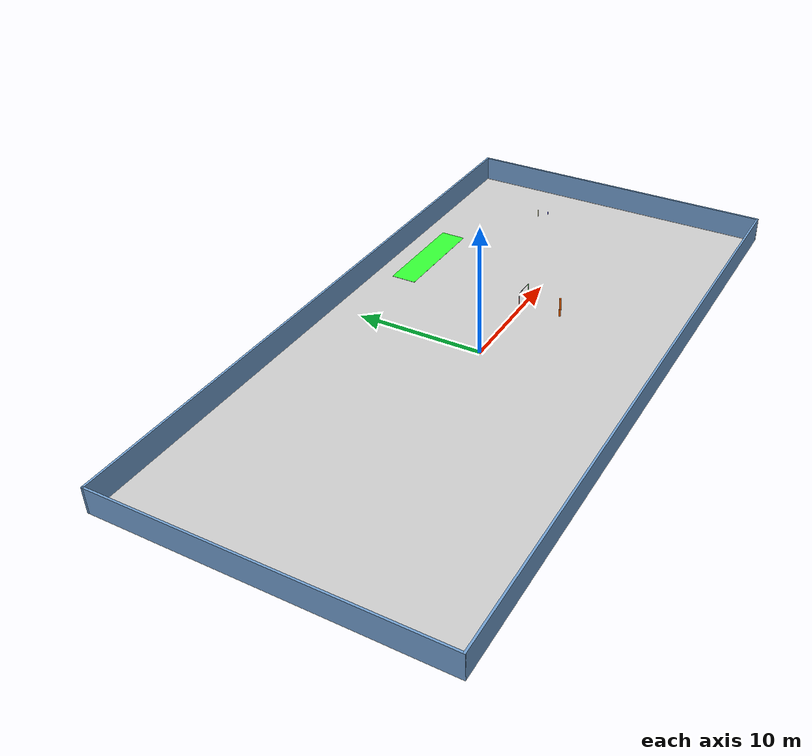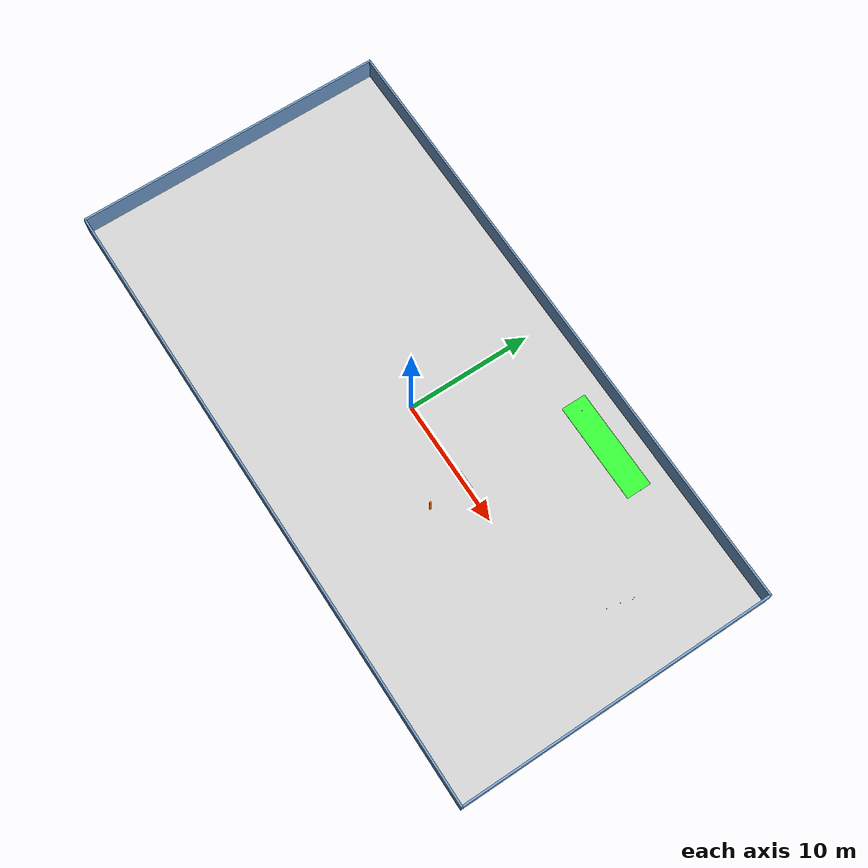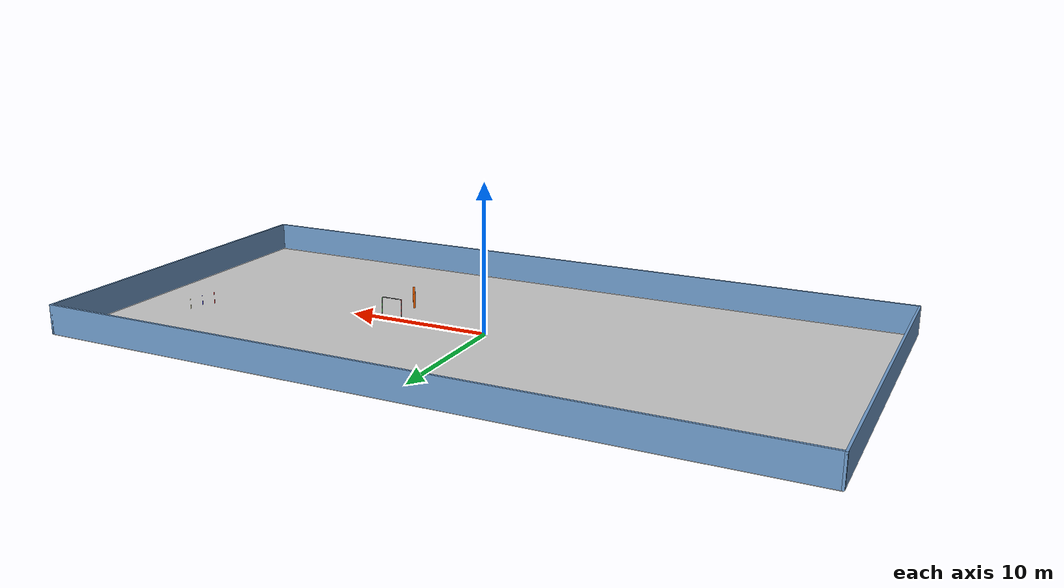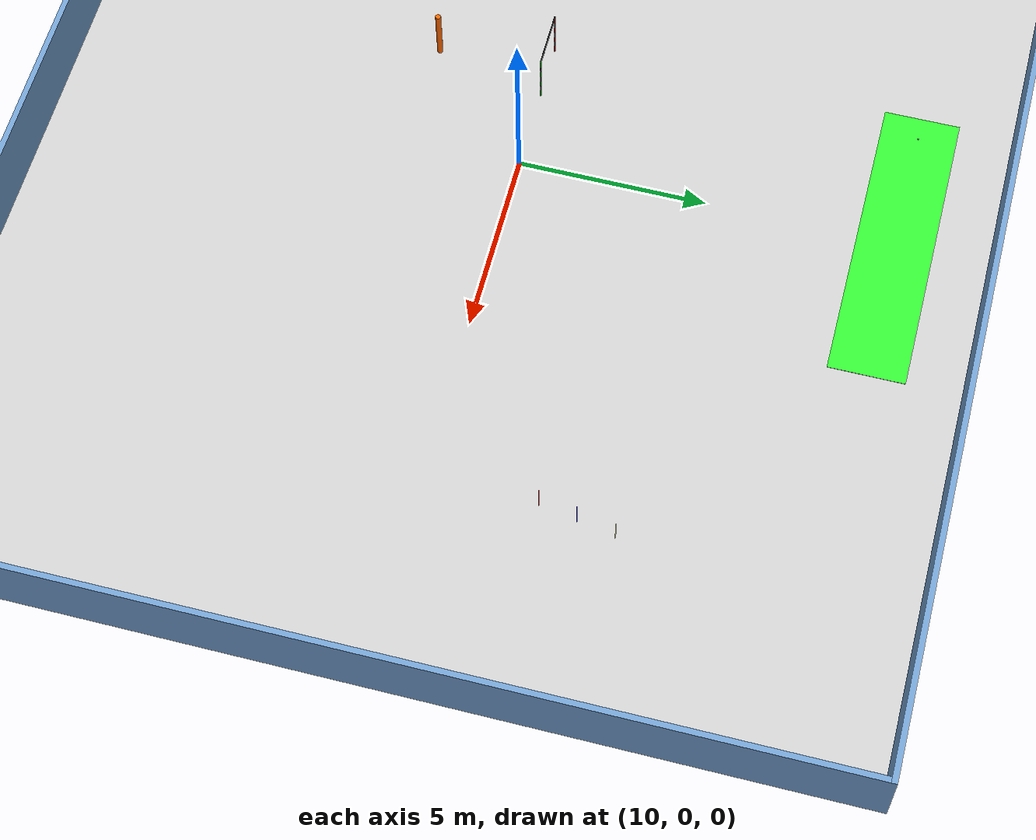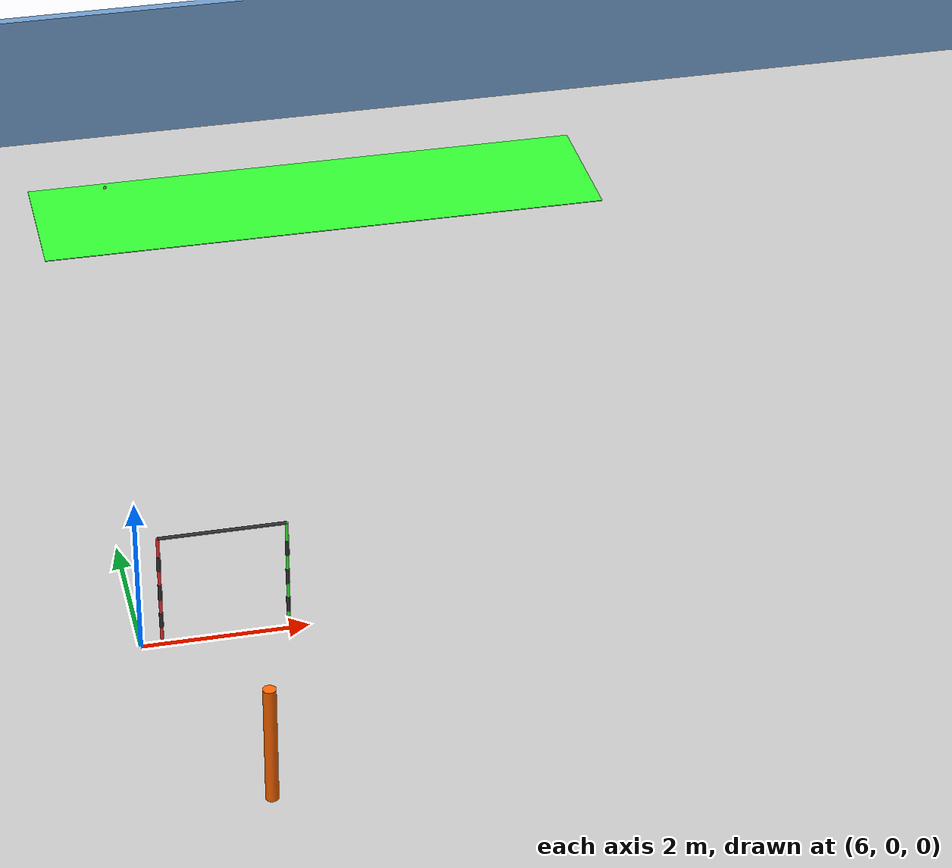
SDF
<sdf version="1.7">
 <world name="default">
  <include><uri>model://sun</uri></include>
  <include><uri>model://wall</uri><static>1</static></include>
  <include><uri>model://gate</uri><pose>7 0 0 0 -0 0</pose><static>1</static></include>
  <include><uri>model://orange_flare</uri><pose>7 -3 0 0 -0 0</pose><static>1</static></include>
  <include><uri>model://green_mat</uri><pose>10 10 0 0 -0 0</pose><static>1</static></include>
  <include><uri>model://pool_ground</uri><static>1</static></include>
  <include><uri>model://golf_ball</uri><pose>7 10 0.2 0 -0 0</pose></include>
  <include><uri>model://yellow_flare</uri><pose>20 5 0.2 0 -0 0</pose></include>
  <include><uri>model://blue_flare</uri><pose>19.8 4 0.2 0 -0 0</pose></include>
  <include><uri>model://red_flare</uri><pose>19.6 3 0.2 0 -0 0</pose></include>
  <plugin name="gazebo_ros_state" filename="libgazebo_ros_state.so">
   <ros><namespace>/sauvc_sim</namespace></ros>
   <update_rate>30.0</update_rate>
  </plugin>
 </world>
</sdf>

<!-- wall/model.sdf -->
<sdf version='1.7'>
  <model name='wall'>
    <pose>0 0 0 0 -0 0</pose>
    <link name='Wall_0'>
      <collision name='Wall_0_Collision'>
        <geometry>
          <box>
            <size>50.15 0.15 2</size>
          </box>
        </geometry>
        <pose>0 0 1 0 -0 0</pose>
      </collision>
      <visual name='Wall_0_Visual'>
        <pose>0 0 1 0 -0 0</pose>
        <geometry>
          <box>
            <size>50.15 0.15 2</size>
          </box>
        </geometry>
        <material>
          <script>
            <uri>file://media/materials/scripts/gazebo.material</uri>
            <name>Gazebo/Grey</name>
          </script>
          <ambient>0.447059 0.623529 0.811765 1</ambient>
        </material>
        <meta>
          <layer>0</layer>
        </meta>
      </visual>
      <pose>0 12.5 0 0 -0 0</pose>
    </link>
    <link name='Wall_2'>
      <collision name='Wall_2_Collision'>
        <geometry>
          <box>
            <size>25.15 0.15 2</size>
          </box>
        </geometry>
        <pose>0 0 1 0 -0 0</pose>
      </collision>
      <visual name='Wall_2_Visual'>
        <pose>0 0 1 0 -0 0</pose>
        <geometry>
          <box>
            <size>25.15 0.15 2</size>
          </box>
        </geometry>
        <material>
          <script>
            <uri>file://media/materials/scripts/gazebo.material</uri>
            <name>Gazebo/Grey</name>
          </script>
          <ambient>0.447059 0.623529 0.811765 1</ambient>
        </material>
        <meta>
          <layer>0</layer>
        </meta>
      </visual>
      <pose>-25 0 0 0 -0 -1.5708</pose>
    </link>
    <link name='Wall_4'>
      <collision name='Wall_4_Collision'>
        <geometry>
          <box>
            <size>25.15 0.15 2</size>
          </box>
        </geometry>
        <pose>0 0 1 0 -0 0</pose>
      </collision>
      <visual name='Wall_4_Visual'>
        <pose>0 0 1 0 -0 0</pose>
        <geometry>
          <box>
            <size>25.15 0.15 2</size>
          </box>
        </geometry>
        <material>
          <script>
            <uri>file://media/materials/scripts/gazebo.material</uri>
            <name>Gazebo/Grey</name>
          </script>
          <ambient>0.447059 0.623529 0.811765 1</ambient>
        </material>
        <meta>
          <layer>0</layer>
        </meta>
      </visual>
      <pose>25 0 0 0 -0 -1.5708</pose>
    </link>
    <link name='Wall_6'>
      <collision name='Wall_6_Collision'>
        <geometry>
          <box>
            <size>50.15 0.15 2</size>
          </box>
        </geometry>
        <pose>0 0 1 0 -0 0</pose>
      </collision>
      <visual name='Wall_6_Visual'>
        <pose>0 0 1 0 -0 0</pose>
        <geometry>
          <box>
            <size>50.15 0.15 2</size>
          </box>
        </geometry>
        <material>
          <script>
            <uri>file://media/materials/scripts/gazebo.material</uri>
            <name>Gazebo/Grey</name>
          </script>
          <ambient>0.447059 0.623529 0.811765 1</ambient>
        </material>
        <meta>
          <layer>0</layer>
        </meta>
      </visual>
      <pose>0 -12.5 0 0 -0 0</pose>
    </link>
    <static>1</static>
  </model>
</sdf>

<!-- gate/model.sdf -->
<sdf version='1.7'>
  <model name='gate'>
    <link name='link_0'>
      <inertial>
        <mass>1</mass>
        <inertia>
          <ixx>0.145833</ixx>
          <ixy>0</ixy>
          <ixz>0</ixz>
          <iyy>0.145833</iyy>
          <iyz>0</iyz>
          <izz>0.125</izz>
        </inertia>
        <pose>0 0 0 0 -0 0</pose>
      </inertial>
      <pose>-0.75 0 0.75 0 -0 0</pose>
      <gravity>1</gravity>
      <self_collide>0</self_collide>
      <kinematic>0</kinematic>
      <enable_wind>0</enable_wind>
      <visual name='ModelPreview_4-link_0-visual_3'>
        <pose>0 0 -0.4 0 -0 0</pose>
        <geometry>
          <cylinder>
            <radius>0.025</radius>
            <length>0.2</length>
          </cylinder>
        </geometry>
        <material>
          <ambient>0.3 0.3 0.3 1</ambient>
          <diffuse>0.2 0.2 0.2 1</diffuse>
          <specular>0.01 0.01 0.01 1</specular>
          <emissive>0 0 0 1</emissive>
        </material>
        <transparency>0</transparency>
        <cast_shadows>1</cast_shadows>
      </visual>
      <visual name='ModelPreview_1-link_0-visual_1'>
        <pose>0 0 0 0 -0 0</pose>
        <geometry>
          <cylinder>
            <radius>0.025</radius>
            <length>0.2</length>
          </cylinder>
        </geometry>
        <material>
          <ambient>0.3 0.3 0.3 1</ambient>
          <diffuse>0.2 0.2 0.2 1</diffuse>
          <specular>0.01 0.01 0.01 1</specular>
          <emissive>0 0 0 1</emissive>
        </material>
        <transparency>0</transparency>
        <cast_shadows>1</cast_shadows>
      </visual>
      <visual name='visual'>
        <pose>0 0 0 0 -0 0</pose>
        <geometry>
          <cylinder>
            <radius>0.02</radius>
            <length>1.5</length>
          </cylinder>
        </geometry>
        <material>
          <ambient>0.5 0.1 0.1 1</ambient>
          <diffuse>1 0.2 0.2 1</diffuse>
          <specular>0.01 0.01 0.01 1</specular>
          <emissive>0 0 0 1</emissive>
        </material>
        <transparency>0</transparency>
        <cast_shadows>1</cast_shadows>
      </visual>
      <visual name='ModelPreview_4-link_0-visual_2'>
        <pose>0 0 0.4 0 -0 0</pose>
        <geometry>
          <cylinder>
            <radius>0.025</radius>
            <length>0.2</length>
          </cylinder>
        </geometry>
        <material>
          <ambient>0.3 0.3 0.3 1</ambient>
          <diffuse>0.2 0.2 0.2 1</diffuse>
          <specular>0.01 0.01 0.01 1</specular>
          <emissive>0 0 0 1</emissive>
        </material>
        <transparency>0</transparency>
        <cast_shadows>1</cast_shadows>
      </visual>
      <collision name='collision'>
        <laser_retro>0</laser_retro>
        <max_contacts>10</max_contacts>
        <pose>0 0 0 0 -0 0</pose>
        <geometry>
          <cylinder>
            <radius>0.02</radius>
            <length>1.5</length>
          </cylinder>
        </geometry>
        <surface>
          <friction>
            <ode>
              <mu>1</mu>
              <mu2>1</mu2>
              <fdir1>0 0 0</fdir1>
              <slip1>0</slip1>
              <slip2>0</slip2>
            </ode>
            <torsional>
              <coefficient>1</coefficient>
              <patch_radius>0</patch_radius>
              <surface_radius>0</surface_radius>
              <use_patch_radius>1</use_patch_radius>
              <ode>
                <slip>0</slip>
              </ode>
            </torsional>
          </friction>
          <bounce>
            <restitution_coefficient>0</restitution_coefficient>
            <threshold>1e+06</threshold>
          </bounce>
          <contact>
            <collide_without_contact>0</collide_without_contact>
            <collide_without_contact_bitmask>1</collide_without_contact_bitmask>
            <collide_bitmask>1</collide_bitmask>
            <ode>
              <soft_cfm>0</soft_cfm>
              <soft_erp>0.2</soft_erp>
              <kp>1e+13</kp>
              <kd>1</kd>
              <max_vel>0.01</max_vel>
              <min_depth>0</min_depth>
            </ode>
            <bullet>
              <split_impulse>1</split_impulse>
              <split_impulse_penetration_threshold>-0.01</split_impulse_penetration_threshold>
              <soft_cfm>0</soft_cfm>
              <soft_erp>0.2</soft_erp>
              <kp>1e+13</kp>
              <kd>1</kd>
            </bullet>
          </contact>
        </surface>
      </collision>
    </link>
    <link name='link_0_clone'>
      <inertial>
        <mass>1</mass>
        <inertia>
          <ixx>0.145833</ixx>
          <ixy>0</ixy>
          <ixz>0</ixz>
          <iyy>0.145833</iyy>
          <iyz>0</iyz>
          <izz>0.125</izz>
        </inertia>
        <pose>0 0 0 0 -0 0</pose>
      </inertial>
      <pose>0.75 0 0.75 0 -0 0</pose>
      <gravity>1</gravity>
      <self_collide>0</self_collide>
      <kinematic>0</kinematic>
      <enable_wind>0</enable_wind>
      <visual name='ModelPreview_4-link_0_clone-visual_1'>
        <pose>0 0 0.4 0 -0 0</pose>
        <geometry>
          <cylinder>
            <radius>0.025</radius>
            <length>0.2</length>
          </cylinder>
        </geometry>
        <material>
          <ambient>0.3 0.3 0.3 1</ambient>
          <diffuse>0.2 0.2 0.2 1</diffuse>
          <specular>0.01 0.01 0.01 1</specular>
          <emissive>0 0 0 1</emissive>
        </material>
        <transparency>0</transparency>
        <cast_shadows>1</cast_shadows>
      </visual>
      <visual name='ModelPreview_4-link_0_clone-visual_3'>
        <pose>0 0 -0.4 0 -0 0</pose>
        <geometry>
          <cylinder>
            <radius>0.025</radius>
            <length>0.2</length>
          </cylinder>
        </geometry>
        <material>
          <ambient>0.3 0.3 0.3 1</ambient>
          <diffuse>0.2 0.2 0.2 1</diffuse>
          <specular>0.01 0.01 0.01 1</specular>
          <emissive>0 0 0 1</emissive>
        </material>
        <transparency>0</transparency>
        <cast_shadows>1</cast_shadows>
      </visual>
      <visual name='visual'>
        <pose>0 0 0 0 -0 0</pose>
        <geometry>
          <cylinder>
            <radius>0.02</radius>
            <length>1.5</length>
          </cylinder>
        </geometry>
        <material>
          <ambient>0.1 0.5 0.1 1</ambient>
          <diffuse>0.2 1 0.2 1</diffuse>
          <specular>0.01 0.01 0.01 1</specular>
          <emissive>0 0 0 1</emissive>
        </material>
        <transparency>0</transparency>
        <cast_shadows>1</cast_shadows>
      </visual>
      <visual name='ModelPreview_4-link_0_clone-visual_2'>
        <pose>0 0 0 0 -0 0</pose>
        <geometry>
          <cylinder>
            <radius>0.025</radius>
            <length>0.2</length>
          </cylinder>
        </geometry>
        <material>
          <ambient>0.3 0.3 0.3 1</ambient>
          <diffuse>0.2 0.2 0.2 1</diffuse>
          <specular>0.01 0.01 0.01 1</specular>
          <emissive>0 0 0 1</emissive>
        </material>
        <transparency>0</transparency>
        <cast_shadows>1</cast_shadows>
      </visual>
      <collision name='collision'>
        <laser_retro>0</laser_retro>
        <max_contacts>10</max_contacts>
        <pose>0 0 0 0 -0 0</pose>
        <geometry>
          <cylinder>
            <radius>0.02</radius>
            <length>1.5</length>
          </cylinder>
        </geometry>
        <surface>
          <friction>
            <ode>
              <mu>1</mu>
              <mu2>1</mu2>
              <fdir1>0 0 0</fdir1>
              <slip1>0</slip1>
              <slip2>0</slip2>
            </ode>
            <torsional>
              <coefficient>1</coefficient>
              <patch_radius>0</patch_radius>
              <surface_radius>0</surface_radius>
              <use_patch_radius>1</use_patch_radius>
              <ode>
                <slip>0</slip>
              </ode>
            </torsional>
          </friction>
          <bounce>
            <restitution_coefficient>0</restitution_coefficient>
            <threshold>1e+06</threshold>
          </bounce>
          <contact>
            <collide_without_contact>0</collide_without_contact>
            <collide_without_contact_bitmask>1</collide_without_contact_bitmask>
            <collide_bitmask>1</collide_bitmask>
            <ode>
              <soft_cfm>0</soft_cfm>
              <soft_erp>0.2</soft_erp>
              <kp>1e+13</kp>
              <kd>1</kd>
              <max_vel>0.01</max_vel>
              <min_depth>0</min_depth>
            </ode>
            <bullet>
              <split_impulse>1</split_impulse>
              <split_impulse_penetration_threshold>-0.01</split_impulse_penetration_threshold>
              <soft_cfm>0</soft_cfm>
              <soft_erp>0.2</soft_erp>
              <kp>1e+13</kp>
              <kd>1</kd>
            </bullet>
          </contact>
        </surface>
      </collision>
    </link>
    <link name='link_0_clone_0'>
      <inertial>
        <mass>1</mass>
        <inertia>
          <ixx>0.145833</ixx>
          <ixy>0</ixy>
          <ixz>0</ixz>
          <iyy>0.145833</iyy>
          <iyz>0</iyz>
          <izz>0.125</izz>
        </inertia>
        <pose>0 0 0 0 -0 0</pose>
      </inertial>
      <pose>0 0 1.5 3.14159 -1.57079 3.14159</pose>
      <gravity>1</gravity>
      <self_collide>0</self_collide>
      <kinematic>0</kinematic>
      <enable_wind>0</enable_wind>
      <visual name='visual'>
        <pose>0 0 0 0 -0 0</pose>
        <geometry>
          <cylinder>
            <radius>0.02</radius>
            <length>1.5</length>
          </cylinder>
        </geometry>
        <material>
          <ambient>0.3 0.3 0.3 1</ambient>
          <diffuse>0.2 0.2 0.2 1</diffuse>
          <specular>0.01 0.01 0.01 1</specular>
          <emissive>0 0 0 1</emissive>
        </material>
        <transparency>0</transparency>
        <cast_shadows>1</cast_shadows>
      </visual>
      <collision name='collision'>
        <laser_retro>0</laser_retro>
        <max_contacts>10</max_contacts>
        <pose>0 0 0 0 -0 0</pose>
        <geometry>
          <cylinder>
            <radius>0.02</radius>
            <length>1.5</length>
          </cylinder>
        </geometry>
        <surface>
          <friction>
            <ode>
              <mu>1</mu>
              <mu2>1</mu2>
              <fdir1>0 0 0</fdir1>
              <slip1>0</slip1>
              <slip2>0</slip2>
            </ode>
            <torsional>
              <coefficient>1</coefficient>
              <patch_radius>0</patch_radius>
              <surface_radius>0</surface_radius>
              <use_patch_radius>1</use_patch_radius>
              <ode>
                <slip>0</slip>
              </ode>
            </torsional>
          </friction>
          <bounce>
            <restitution_coefficient>0</restitution_coefficient>
            <threshold>1e+06</threshold>
          </bounce>
          <contact>
            <collide_without_contact>0</collide_without_contact>
            <collide_without_contact_bitmask>1</collide_without_contact_bitmask>
            <collide_bitmask>1</collide_bitmask>
            <ode>
              <soft_cfm>0</soft_cfm>
              <soft_erp>0.2</soft_erp>
              <kp>1e+13</kp>
              <kd>1</kd>
              <max_vel>0.01</max_vel>
              <min_depth>0</min_depth>
            </ode>
            <bullet>
              <split_impulse>1</split_impulse>
              <split_impulse_penetration_threshold>-0.01</split_impulse_penetration_threshold>
              <soft_cfm>0</soft_cfm>
              <soft_erp>0.2</soft_erp>
              <kp>1e+13</kp>
              <kd>1</kd>
            </bullet>
          </contact>
        </surface>
      </collision>
    </link>
    <joint name='link_0_clone_0_JOINT_0' type='fixed'>
      <parent>link_0_clone_0</parent>
      <child>link_0</child>
      <pose>0 0 0 0 -0 0</pose>
      <physics>
        <ode>
          <limit>
            <cfm>0</cfm>
            <erp>0.2</erp>
          </limit>
          <suspension>
            <cfm>0</cfm>
            <erp>0.2</erp>
          </suspension>
        </ode>
      </physics>
    </joint>
    <joint name='link_0_clone_0_JOINT_1' type='fixed'>
      <parent>link_0_clone_0</parent>
      <child>link_0_clone</child>
      <pose>0 0 0 0 -0 0</pose>
      <physics>
        <ode>
          <limit>
            <cfm>0</cfm>
            <erp>0.2</erp>
          </limit>
          <suspension>
            <cfm>0</cfm>
            <erp>0.2</erp>
          </suspension>
        </ode>
      </physics>
    </joint>
    <static>1</static>
    <allow_auto_disable>1</allow_auto_disable>
  </model>
</sdf>

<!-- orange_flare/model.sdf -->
<sdf version='1.7'>
  <model name='orange_flare'>
    <link name='link_1'>
      <inertial>
        <mass>0.0123911</mass>
        <inertia>
          <ixx>0.00104219</ixx>
          <ixy>0</ixy>
          <ixz>0</ixz>
          <iyy>0.00104219</iyy>
          <iyz>0</iyz>
          <izz>1.919e-05</izz>
        </inertia>
        <pose>0 0 0 0 -0 0</pose>
      </inertial>
      <pose>0 0 0.75 0 -0 0</pose>
      <gravity>1</gravity>
      <self_collide>0</self_collide>
      <kinematic>0</kinematic>
      <enable_wind>0</enable_wind>
      <visual name='visual'>
        <pose>0 0 0 0 -0 0</pose>
        <geometry>
          <cylinder>
            <radius>0.075</radius>
            <length>1.5</length>
          </cylinder>
        </geometry>
        <material>
          <ambient>1 0.4 0 1</ambient>
          <diffuse>1 0.4 0 1</diffuse>
          <specular>0.01 0.01 0.01 1</specular>
          <emissive>0 0 0 1</emissive>
        </material>
        <transparency>0</transparency>
        <cast_shadows>1</cast_shadows>
      </visual>
      <collision name='collision'>
        <laser_retro>0</laser_retro>
        <max_contacts>10</max_contacts>
        <pose>0 0 0 0 -0 0</pose>
        <geometry>
          <cylinder>
            <radius>0.075</radius>
            <length>1.5</length>
          </cylinder>
        </geometry>
        <surface>
          <friction>
            <ode>
              <mu>1</mu>
              <mu2>1</mu2>
              <fdir1>0 0 0</fdir1>
              <slip1>0</slip1>
              <slip2>0</slip2>
            </ode>
            <torsional>
              <coefficient>1</coefficient>
              <patch_radius>0</patch_radius>
              <surface_radius>0</surface_radius>
              <use_patch_radius>1</use_patch_radius>
              <ode>
                <slip>0</slip>
              </ode>
            </torsional>
          </friction>
          <bounce>
            <restitution_coefficient>0</restitution_coefficient>
            <threshold>1e+06</threshold>
          </bounce>
          <contact>
            <collide_without_contact>0</collide_without_contact>
            <collide_without_contact_bitmask>1</collide_without_contact_bitmask>
            <collide_bitmask>1</collide_bitmask>
            <ode>
              <soft_cfm>0</soft_cfm>
              <soft_erp>0.2</soft_erp>
              <kp>1e+13</kp>
              <kd>1</kd>
              <max_vel>0.01</max_vel>
              <min_depth>0</min_depth>
            </ode>
            <bullet>
              <split_impulse>1</split_impulse>
              <split_impulse_penetration_threshold>-0.01</split_impulse_penetration_threshold>
              <soft_cfm>0</soft_cfm>
              <soft_erp>0.2</soft_erp>
              <kp>1e+13</kp>
              <kd>1</kd>
            </bullet>
          </contact>
        </surface>
      </collision>
    </link>
    <static>1</static>
    <allow_auto_disable>1</allow_auto_disable>
  </model>
</sdf>

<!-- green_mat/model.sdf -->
<sdf version='1.7'>
  <model name='green_mat'>
    <link name='link_1'>
      <inertial>
        <mass>1</mass>
        <inertia>
          <ixx>0.166667</ixx>
          <ixy>0</ixy>
          <ixz>0</ixz>
          <iyy>0.166667</iyy>
          <iyz>0</iyz>
          <izz>0.166667</izz>
        </inertia>
        <pose>0 0 0 0 -0 0</pose>
      </inertial>
      <pose>0 0 0 0 -0 0</pose>
      <gravity>1</gravity>
      <self_collide>0</self_collide>
      <kinematic>0</kinematic>
      <enable_wind>0</enable_wind>
      <visual name='visual'>
        <pose>0 0 0 0 -0 0</pose>
        <geometry>
          <box>
            <size>8 2 0.01</size>
          </box>
        </geometry>
        <material>
          <ambient>0.1 0.5 0.1 1</ambient>
          <diffuse>0.2 1 0.2 1</diffuse>
          <specular>0.01 0.01 0.01 1</specular>
          <emissive>0 0 0 1</emissive>
        </material>
        <transparency>0</transparency>
        <cast_shadows>1</cast_shadows>
      </visual>
      <collision name='collision'>
        <laser_retro>0</laser_retro>
        <max_contacts>10</max_contacts>
        <pose>0 0 0 0 -0 0</pose>
        <geometry>
          <box>
            <size>8 2 0.01</size>
          </box>
        </geometry>
        <surface>
          <friction>
            <ode>
              <mu>1</mu>
              <mu2>1</mu2>
              <fdir1>0 0 0</fdir1>
              <slip1>0</slip1>
              <slip2>0</slip2>
            </ode>
            <torsional>
              <coefficient>1</coefficient>
              <patch_radius>0</patch_radius>
              <surface_radius>0</surface_radius>
              <use_patch_radius>1</use_patch_radius>
              <ode>
                <slip>0</slip>
              </ode>
            </torsional>
          </friction>
          <bounce>
            <restitution_coefficient>0</restitution_coefficient>
            <threshold>1e+06</threshold>
          </bounce>
          <contact>
            <collide_without_contact>0</collide_without_contact>
            <collide_without_contact_bitmask>1</collide_without_contact_bitmask>
            <collide_bitmask>1</collide_bitmask>
            <ode>
              <soft_cfm>0</soft_cfm>
              <soft_erp>0.2</soft_erp>
              <kp>1e+13</kp>
              <kd>1</kd>
              <max_vel>0.01</max_vel>
              <min_depth>0</min_depth>
            </ode>
            <bullet>
              <split_impulse>1</split_impulse>
              <split_impulse_penetration_threshold>-0.01</split_impulse_penetration_threshold>
              <soft_cfm>0</soft_cfm>
              <soft_erp>0.2</soft_erp>
              <kp>1e+13</kp>
              <kd>1</kd>
            </bullet>
          </contact>
        </surface>
      </collision>
    </link>
    <static>1</static>
    <allow_auto_disable>1</allow_auto_disable>
  </model>
</sdf>

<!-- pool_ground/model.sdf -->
<sdf version="1.4">
   <model name="pool_ground">
      <static>true</static>
      <link name="link">
         <collision name="collision">
            <geometry>
               <plane>
                  <normal>0 0 1</normal>
                  <size>50 25</size>
               </plane>
            </geometry>
            <surface>
               <friction>
                  <ode>
                     <mu>100</mu>
                     <mu2>50</mu2>
                  </ode>
               </friction>
            </surface>
         </collision>
         <visual name="visual">
            <cast_shadows>false</cast_shadows>
            <geometry>
               <plane>
                  <normal>0 0 1</normal>
                  <size>50 25</size>
               </plane>
            </geometry>
            <material>
               <script>
                  <uri>model://pool_ground/materials/scripts</uri>
                  <uri>model://pool_ground/materials/textures/</uri>
                  <name>MyGroundPlane/Image</name>
               </script>
            </material>
         </visual>
      </link>
   </model>
</sdf>

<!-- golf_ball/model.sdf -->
<sdf version='1.7'>
  <model name='golf_ball'>
    <link name='link_0'>
      <inertial>
        <mass>0.0460639</mass>
        <inertia>
          <ixx>8.4e-06</ixx>
          <ixy>0</ixy>
          <ixz>0</ixz>
          <iyy>8.4e-06</iyy>
          <iyz>0</iyz>
          <izz>8.4e-06</izz>
        </inertia>
        <pose>0 0 0 0 -0 0</pose>
      </inertial>
      <pose>0 0 0.3 0 -0 0</pose>
      <gravity>1</gravity>
      <self_collide>0</self_collide>
      <kinematic>0</kinematic>
      <enable_wind>0</enable_wind>
      <visual name='visual'>
        <pose>0 0 0 0 -0 0</pose>
        <geometry>
          <sphere>
            <radius>0.02135</radius>
          </sphere>
        </geometry>
        <material>
          <lighting>1</lighting>
          <script>
            <uri>file://media/materials/scripts/gazebo.material</uri>
            <name>Gazebo/Grey</name>
          </script>
          <shader type='pixel'>
            <normal_map>__default__</normal_map>
          </shader>
          <ambient>1 1 1 1</ambient>
          <diffuse>1 1 1 1</diffuse>
          <specular>1 1 1 1</specular>
          <emissive>0 0 0 1</emissive>
        </material>
        <transparency>0</transparency>
        <cast_shadows>1</cast_shadows>
      </visual>
      <collision name='collision'>
        <laser_retro>0</laser_retro>
        <max_contacts>10</max_contacts>
        <pose>0 0 0 0 -0 0</pose>
        <geometry>
          <sphere>
            <radius>0.02135</radius>
          </sphere>
        </geometry>
        <surface>
          <friction>
            <ode>
              <mu>1</mu>
              <mu2>1</mu2>
              <fdir1>0 0 0</fdir1>
              <slip1>0</slip1>
              <slip2>0</slip2>
            </ode>
            <torsional>
              <coefficient>1</coefficient>
              <patch_radius>0</patch_radius>
              <surface_radius>0</surface_radius>
              <use_patch_radius>1</use_patch_radius>
              <ode>
                <slip>0</slip>
              </ode>
            </torsional>
          </friction>
          <bounce>
            <restitution_coefficient>0</restitution_coefficient>
            <threshold>1e+06</threshold>
          </bounce>
          <contact>
            <collide_without_contact>0</collide_without_contact>
            <collide_without_contact_bitmask>1</collide_without_contact_bitmask>
            <collide_bitmask>1</collide_bitmask>
            <ode>
              <soft_cfm>0</soft_cfm>
              <soft_erp>0.2</soft_erp>
              <kp>1e+13</kp>
              <kd>1</kd>
              <max_vel>0.01</max_vel>
              <min_depth>0</min_depth>
            </ode>
            <bullet>
              <split_impulse>1</split_impulse>
              <split_impulse_penetration_threshold>-0.01</split_impulse_penetration_threshold>
              <soft_cfm>0</soft_cfm>
              <soft_erp>0.2</soft_erp>
              <kp>1e+13</kp>
              <kd>1</kd>
            </bullet>
          </contact>
        </surface>
      </collision>
    </link>
    <static>0</static>
    <allow_auto_disable>1</allow_auto_disable>

    <plugin name="buoyancy" filename="libBuoyancyPlugin.so">
      <fluid_density>1000</fluid_density>
    </plugin>
  </model>
</sdf>

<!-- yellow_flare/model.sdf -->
<sdf version='1.7'>
  <model name='yellow_flare'>
    <link name='link_0'>
      <inertial>
        <mass>1</mass>
        <inertia>
          <ixx>0.145833</ixx>
          <ixy>0</ixy>
          <ixz>0</ixz>
          <iyy>0.145833</iyy>
          <iyz>0</iyz>
          <izz>0.125</izz>
        </inertia>
        <pose>0 0 0 0 -0 0</pose>
      </inertial>
      <pose>0 0 0.4 0 -0 0</pose>
      <gravity>1</gravity>
      <self_collide>0</self_collide>
      <kinematic>0</kinematic>
      <enable_wind>0</enable_wind>
      <visual name='visual'>
        <pose>0 0 0 0 -0 0</pose>
        <geometry>
          <cylinder>
            <radius>0.01</radius>
            <length>0.8</length>
          </cylinder>
        </geometry>
        <material>
          <ambient>1 1 0.3 1</ambient>
          <diffuse>1 1 0.7 1</diffuse>
          <specular>0.01 0.01 0.01 1</specular>
          <emissive>0 0 0 1</emissive>
        </material>
        <transparency>0</transparency>
        <cast_shadows>1</cast_shadows>
      </visual>
      <collision name='collision'>
        <laser_retro>0</laser_retro>
        <max_contacts>10</max_contacts>
        <pose>0 0 0 0 -0 0</pose>
        <geometry>
          <cylinder>
            <radius>0.01</radius>
            <length>0.8</length>
          </cylinder>
        </geometry>
        <surface>
          <friction>
            <ode>
              <mu>1</mu>
              <mu2>1</mu2>
              <fdir1>0 0 0</fdir1>
              <slip1>0</slip1>
              <slip2>0</slip2>
            </ode>
            <torsional>
              <coefficient>1</coefficient>
              <patch_radius>0</patch_radius>
              <surface_radius>0</surface_radius>
              <use_patch_radius>1</use_patch_radius>
              <ode>
                <slip>0</slip>
              </ode>
            </torsional>
          </friction>
          <bounce>
            <restitution_coefficient>0</restitution_coefficient>
            <threshold>1e+06</threshold>
          </bounce>
          <contact>
            <collide_without_contact>0</collide_without_contact>
            <collide_without_contact_bitmask>1</collide_without_contact_bitmask>
            <collide_bitmask>1</collide_bitmask>
            <ode>
              <soft_cfm>0</soft_cfm>
              <soft_erp>0.2</soft_erp>
              <kp>1e+13</kp>
              <kd>1</kd>
              <max_vel>0.01</max_vel>
              <min_depth>0</min_depth>
            </ode>
            <bullet>
              <split_impulse>1</split_impulse>
              <split_impulse_penetration_threshold>-0.01</split_impulse_penetration_threshold>
              <soft_cfm>0</soft_cfm>
              <soft_erp>0.2</soft_erp>
              <kp>1e+13</kp>
              <kd>1</kd>
            </bullet>
          </contact>
        </surface>
      </collision>
    </link>
    <static>0</static>
    <allow_auto_disable>1</allow_auto_disable>
  </model>
</sdf>

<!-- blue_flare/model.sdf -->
<sdf version='1.7'>
  <model name='blue_flare'>
    <link name='link_0'>
      <inertial>
        <mass>1</mass>
        <inertia>
          <ixx>0.145833</ixx>
          <ixy>0</ixy>
          <ixz>0</ixz>
          <iyy>0.145833</iyy>
          <iyz>0</iyz>
          <izz>0.125</izz>
        </inertia>
        <pose>0 0 0 0 -0 0</pose>
      </inertial>
      <pose>0 0 0.4 0 -0 0</pose>
      <gravity>1</gravity>
      <self_collide>0</self_collide>
      <kinematic>0</kinematic>
      <enable_wind>0</enable_wind>
      <visual name='visual'>
        <pose>0 0 0 0 -0 0</pose>
        <geometry>
          <cylinder>
            <radius>0.01</radius>
            <length>0.8</length>
          </cylinder>
        </geometry>
        <material>
          <ambient>0 0 1 1</ambient>
          <diffuse>0 0 1 1</diffuse>
          <specular>0.01 0.01 0.01 1</specular>
          <emissive>0 0 0 1</emissive>
        </material>
        <transparency>0</transparency>
        <cast_shadows>1</cast_shadows>
      </visual>
      <collision name='collision'>
        <laser_retro>0</laser_retro>
        <max_contacts>10</max_contacts>
        <pose>0 0 0 0 -0 0</pose>
        <geometry>
          <cylinder>
            <radius>0.01</radius>
            <length>0.8</length>
          </cylinder>
        </geometry>
        <surface>
          <friction>
            <ode>
              <mu>1</mu>
              <mu2>1</mu2>
              <fdir1>0 0 0</fdir1>
              <slip1>0</slip1>
              <slip2>0</slip2>
            </ode>
            <torsional>
              <coefficient>1</coefficient>
              <patch_radius>0</patch_radius>
              <surface_radius>0</surface_radius>
              <use_patch_radius>1</use_patch_radius>
              <ode>
                <slip>0</slip>
              </ode>
            </torsional>
          </friction>
          <bounce>
            <restitution_coefficient>0</restitution_coefficient>
            <threshold>1e+06</threshold>
          </bounce>
          <contact>
            <collide_without_contact>0</collide_without_contact>
            <collide_without_contact_bitmask>1</collide_without_contact_bitmask>
            <collide_bitmask>1</collide_bitmask>
            <ode>
              <soft_cfm>0</soft_cfm>
              <soft_erp>0.2</soft_erp>
              <kp>1e+13</kp>
              <kd>1</kd>
              <max_vel>0.01</max_vel>
              <min_depth>0</min_depth>
            </ode>
            <bullet>
              <split_impulse>1</split_impulse>
              <split_impulse_penetration_threshold>-0.01</split_impulse_penetration_threshold>
              <soft_cfm>0</soft_cfm>
              <soft_erp>0.2</soft_erp>
              <kp>1e+13</kp>
              <kd>1</kd>
            </bullet>
          </contact>
        </surface>
      </collision>
    </link>
    <static>0</static>
    <allow_auto_disable>1</allow_auto_disable>
  </model>
</sdf>

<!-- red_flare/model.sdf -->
<sdf version='1.7'>
  <model name='red_flare'>
    <link name='link_0'>
      <inertial>
        <mass>1</mass>
        <inertia>
          <ixx>0.145833</ixx>
          <ixy>0</ixy>
          <ixz>0</ixz>
          <iyy>0.145833</iyy>
          <iyz>0</iyz>
          <izz>0.125</izz>
        </inertia>
        <pose>0 0 0 0 -0 0</pose>
      </inertial>
      <pose>0 0 0.4 0 -0 0</pose>
      <gravity>1</gravity>
      <self_collide>0</self_collide>
      <kinematic>0</kinematic>
      <enable_wind>0</enable_wind>
      <visual name='visual'>
        <pose>0 0 0 0 -0 0</pose>
        <geometry>
          <cylinder>
            <radius>0.01</radius>
            <length>0.8</length>
          </cylinder>
        </geometry>
        <material>
          <ambient>1 0 0 1</ambient>
          <diffuse>1 0 0 1</diffuse>
          <specular>0.01 0.01 0.01 1</specular>
          <emissive>0 0 0 1</emissive>
        </material>
        <transparency>0</transparency>
        <cast_shadows>1</cast_shadows>
      </visual>
      <collision name='collision'>
        <laser_retro>0</laser_retro>
        <max_contacts>10</max_contacts>
        <pose>0 0 0 0 -0 0</pose>
        <geometry>
          <cylinder>
            <radius>0.01</radius>
            <length>0.8</length>
          </cylinder>
        </geometry>
        <surface>
          <friction>
            <ode>
              <mu>1</mu>
              <mu2>1</mu2>
              <fdir1>0 0 0</fdir1>
              <slip1>0</slip1>
              <slip2>0</slip2>
            </ode>
            <torsional>
              <coefficient>1</coefficient>
              <patch_radius>0</patch_radius>
              <surface_radius>0</surface_radius>
              <use_patch_radius>1</use_patch_radius>
              <ode>
                <slip>0</slip>
              </ode>
            </torsional>
          </friction>
          <bounce>
            <restitution_coefficient>0</restitution_coefficient>
            <threshold>1e+06</threshold>
          </bounce>
          <contact>
            <collide_without_contact>0</collide_without_contact>
            <collide_without_contact_bitmask>1</collide_without_contact_bitmask>
            <collide_bitmask>1</collide_bitmask>
            <ode>
              <soft_cfm>0</soft_cfm>
              <soft_erp>0.2</soft_erp>
              <kp>1e+13</kp>
              <kd>1</kd>
              <max_vel>0.01</max_vel>
              <min_depth>0</min_depth>
            </ode>
            <bullet>
              <split_impulse>1</split_impulse>
              <split_impulse_penetration_threshold>-0.01</split_impulse_penetration_threshold>
              <soft_cfm>0</soft_cfm>
              <soft_erp>0.2</soft_erp>
              <kp>1e+13</kp>
              <kd>1</kd>
            </bullet>
          </contact>
        </surface>
      </collision>
    </link>
    <static>0</static>
    <allow_auto_disable>1</allow_auto_disable>
  </model>
</sdf>
